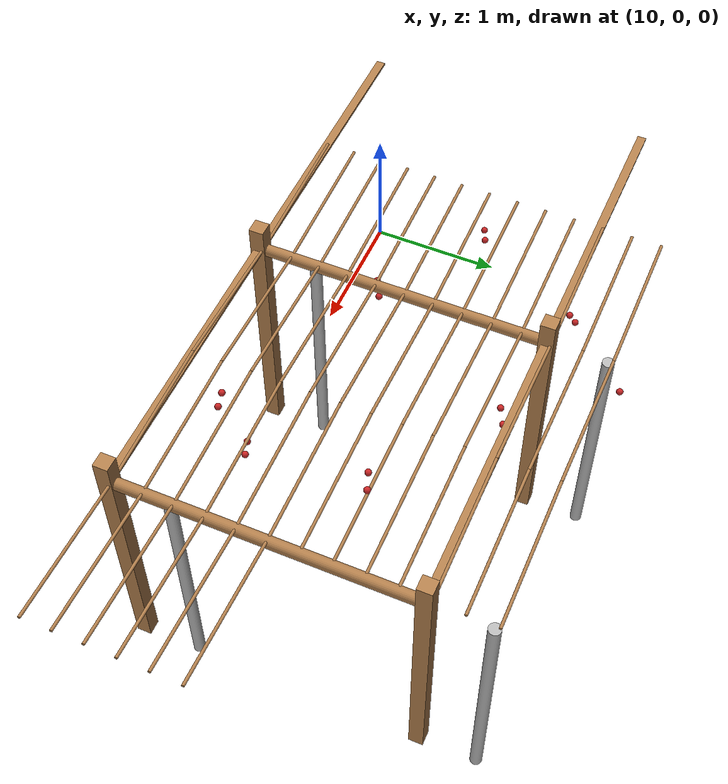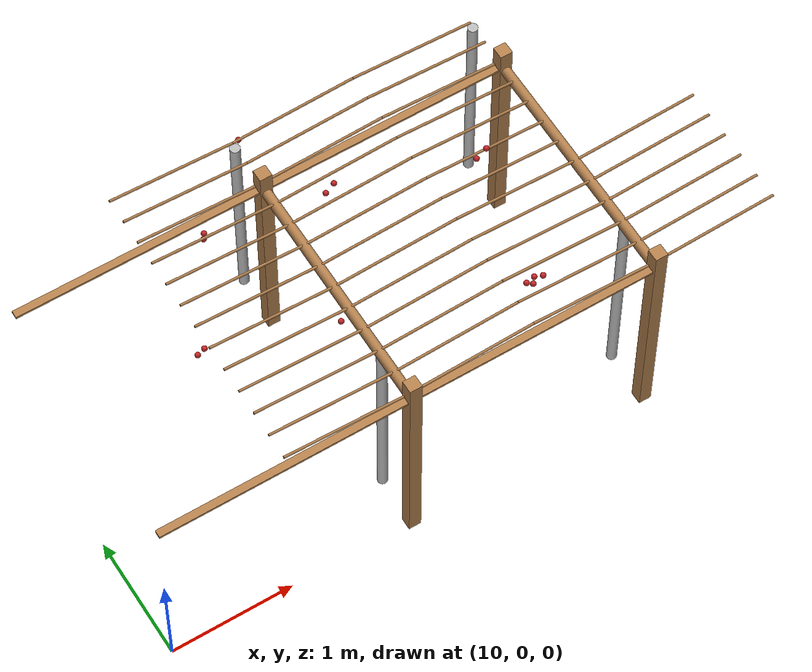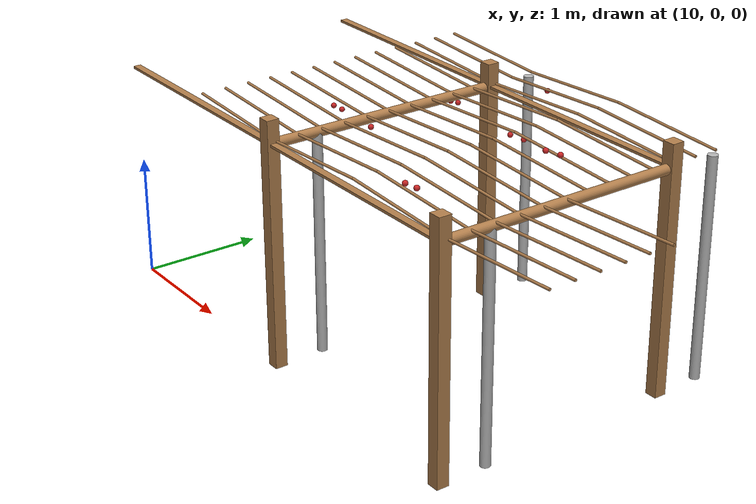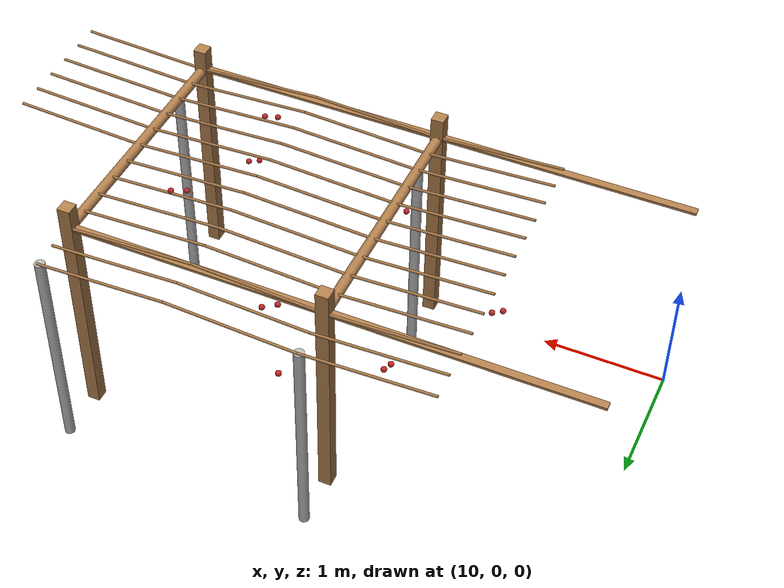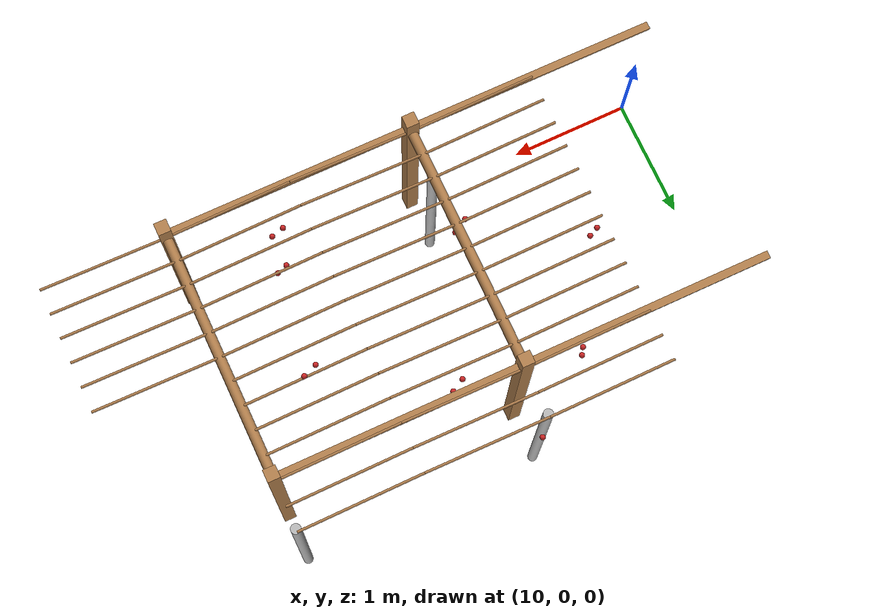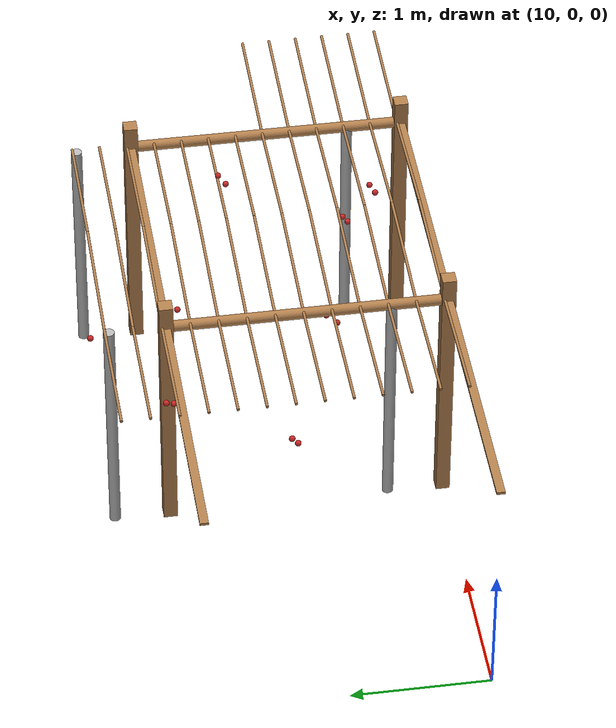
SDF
<sdf version="1.4">
 <model name="pergola">
  <include><name>post_66</name><pose>12.0 0.0 0 0 0 0</pose><uri>model://post</uri></include>
  <include><name>post_67</name><pose>12.0 2.0 0 0 0 0</pose><uri>model://post</uri></include>
  <include><name>post_77</name><pose>14.0 0.0 0 0 0 0</pose><uri>model://post</uri></include>
  <include><name>post_78</name><pose>14.0 2.0 0 0 0 0</pose><uri>model://post</uri></include>
  <link name="beam_55">
   <pose>11.0 0.0 1.81 0 0 0</pose>
   <collision name="collision"><geometry><box><size>2.0 0.06 0.02</size></box></geometry></collision>
   <visual name="visual">
    <geometry><box><size>2.0 0.06 0.02</size></box></geometry>
    <material><script><name>Gazebo/Wood</name></script></material>
   </visual>
   <inertial>
    <mass>5</mass>
    <inertia>
     <ixx>0.0016666666666666668</ixx>
     <ixy>0.0</ixy>
     <ixz>0.0</ixz>
     <iyy>1.6681666666666664</iyy>
     <iyz>0.0</iyz>
     <izz>1.6668333333333332</izz>
    </inertia>
   </inertial>
  </link>
  <link name="beam_56">
   <pose>11.0 2.0 1.81 0 0 0</pose>
   <collision name="collision"><geometry><box><size>2.0 0.06 0.02</size></box></geometry></collision>
   <visual name="visual">
    <geometry><box><size>2.0 0.06 0.02</size></box></geometry>
    <material><script><name>Gazebo/Wood</name></script></material>
   </visual>
   <inertial>
    <mass>5</mass>
    <inertia>
     <ixx>0.0016666666666666668</ixx>
     <ixy>0.0</ixy>
     <ixz>0.0</ixz>
     <iyy>1.6681666666666664</iyy>
     <iyz>0.0</iyz>
     <izz>1.6668333333333332</izz>
    </inertia>
   </inertial>
  </link>
  <link name="beam_66">
   <pose>13.0 0.0 1.81 0 0 0</pose>
   <collision name="collision"><geometry><box><size>2.0 0.06 0.02</size></box></geometry></collision>
   <visual name="visual">
    <geometry><box><size>2.0 0.06 0.02</size></box></geometry>
    <material><script><name>Gazebo/Wood</name></script></material>
   </visual>
   <inertial>
    <mass>5</mass>
    <inertia>
     <ixx>0.0016666666666666668</ixx>
     <ixy>0.0</ixy>
     <ixz>0.0</ixz>
     <iyy>1.6681666666666664</iyy>
     <iyz>0.0</iyz>
     <izz>1.6668333333333332</izz>
    </inertia>
   </inertial>
  </link>
  <link name="beam_67">
   <pose>13.0 2.0 1.81 0 0 0</pose>
   <collision name="collision"><geometry><box><size>2.0 0.06 0.02</size></box></geometry></collision>
   <visual name="visual">
    <geometry><box><size>2.0 0.06 0.02</size></box></geometry>
    <material><script><name>Gazebo/Wood</name></script></material>
   </visual>
   <inertial>
    <mass>5</mass>
    <inertia>
     <ixx>0.0016666666666666668</ixx>
     <ixy>0.0</ixy>
     <ixz>0.0</ixz>
     <iyy>1.6681666666666664</iyy>
     <iyz>0.0</iyz>
     <izz>1.6668333333333332</izz>
    </inertia>
   </inertial>
  </link>
  <include><name>tree_60</name><pose>12.0 0.4 0 0 0 0</pose><uri>model://tree_trunk</uri></include>
  <include><name>tree_61</name><pose>12.0 2.4 0 0 0 0</pose><uri>model://tree_trunk</uri></include>
  <include><name>tree_70</name><pose>14.0 0.4 0 0 0 0</pose><uri>model://tree_trunk</uri></include>
  <include><name>tree_71</name><pose>14.0 2.4 0 0 0 0</pose><uri>model://tree_trunk</uri></include>
  <link name="baseBranch_60">
   <pose>12.0 1.0 1.8 1.5707963267948966 0 0</pose>
   <collision name="collision">
    <geometry><cylinder><radius>0.04</radius><length>1.94</length></cylinder></geometry>
   </collision>
   <visual name="visual">
    <geometry><cylinder><radius>0.04</radius><length>1.94</length></cylinder></geometry>
    <material><script><name>Gazebo/WoodFloor</name></script></material>
   </visual>
   <inertial>
    <mass>10</mass>
    <inertia>
     <ixx>3.140333333333333</ixx>
     <ixy>0.0</ixy>
     <ixz>0.0</ixz>
     <iyy>3.140333333333333</iyy>
     <iyz>0.0</iyz>
     <izz>0.008</izz>
    </inertia>
   </inertial>
  </link>
  <link name="baseBranch_70">
   <pose>14.0 1.0 1.8 1.5707963267948966 0 0</pose>
   <collision name="collision">
    <geometry><cylinder><radius>0.04</radius><length>1.94</length></cylinder></geometry>
   </collision>
   <visual name="visual">
    <geometry><cylinder><radius>0.04</radius><length>1.94</length></cylinder></geometry>
    <material><script><name>Gazebo/WoodFloor</name></script></material>
   </visual>
   <inertial>
    <mass>10</mass>
    <inertia>
     <ixx>3.140333333333333</ixx>
     <ixy>0.0</ixy>
     <ixz>0.0</ixz>
     <iyy>3.140333333333333</iyy>
     <iyz>0.0</iyz>
     <izz>0.008</izz>
    </inertia>
   </inertial>
  </link>
  <link name="vine_1001">
   <pose>11.5 0.03 1.85 0 -1.5208379310729538 0</pose>
   <collision name="collision">
    <geometry><cylinder><radius>0.01</radius><length>1.0012492197250393</length></cylinder></geometry>
   </collision>
   <visual name="visual">
    <geometry><cylinder><radius>0.01</radius><length>1.0012492197250393</length></cylinder></geometry>
    <material><script><name>Gazebo/WoodFloor</name></script></material>
   </visual>
   <inertial>
    <mass>5</mass>
    <inertia>
     <ixx>0.41783333333333345</ixx>
     <ixy>0.0</ixy>
     <ixz>0.0</ixz>
     <iyy>0.41783333333333345</iyy>
     <iyz>0.0</iyz>
     <izz>0.00025</izz>
    </inertia>
   </inertial>
  </link>
  <link name="vine_1003">
   <pose>11.5 0.23 1.85 0 -1.5208379310729538 0</pose>
   <collision name="collision">
    <geometry><cylinder><radius>0.01</radius><length>1.0012492197250393</length></cylinder></geometry>
   </collision>
   <visual name="visual">
    <geometry><cylinder><radius>0.01</radius><length>1.0012492197250393</length></cylinder></geometry>
    <material><script><name>Gazebo/WoodFloor</name></script></material>
   </visual>
   <inertial>
    <mass>5</mass>
    <inertia>
     <ixx>0.41783333333333345</ixx>
     <ixy>0.0</ixy>
     <ixz>0.0</ixz>
     <iyy>0.41783333333333345</iyy>
     <iyz>0.0</iyz>
     <izz>0.00025</izz>
    </inertia>
   </inertial>
  </link>
  <link name="vine_1005">
   <pose>11.5 0.43000000000000005 1.85 0 -1.5208379310729538 0</pose>
   <collision name="collision">
    <geometry><cylinder><radius>0.01</radius><length>1.0012492197250393</length></cylinder></geometry>
   </collision>
   <visual name="visual">
    <geometry><cylinder><radius>0.01</radius><length>1.0012492197250393</length></cylinder></geometry>
    <material><script><name>Gazebo/WoodFloor</name></script></material>
   </visual>
   <inertial>
    <mass>5</mass>
    <inertia>
     <ixx>0.41783333333333345</ixx>
     <ixy>0.0</ixy>
     <ixz>0.0</ixz>
     <iyy>0.41783333333333345</iyy>
     <iyz>0.0</iyz>
     <izz>0.00025</izz>
    </inertia>
   </inertial>
  </link>
  <link name="vine_1007">
   <pose>11.5 0.6300000000000001 1.85 0 -1.5208379310729538 0</pose>
   <collision name="collision">
    <geometry><cylinder><radius>0.01</radius><length>1.0012492197250393</length></cylinder></geometry>
   </collision>
   <visual name="visual">
    <geometry><cylinder><radius>0.01</radius><length>1.0012492197250393</length></cylinder></geometry>
    <material><script><name>Gazebo/WoodFloor</name></script></material>
   </visual>
   <inertial>
    <mass>5</mass>
    <inertia>
     <ixx>0.41783333333333345</ixx>
     <ixy>0.0</ixy>
     <ixz>0.0</ixz>
     <iyy>0.41783333333333345</iyy>
     <iyz>0.0</iyz>
     <izz>0.00025</izz>
    </inertia>
   </inertial>
  </link>
  <link name="vine_1009">
   <pose>11.5 0.8300000000000001 1.85 0 -1.5208379310729538 0</pose>
   <collision name="collision">
    <geometry><cylinder><radius>0.01</radius><length>1.0012492197250393</length></cylinder></geometry>
   </collision>
   <visual name="visual">
    <geometry><cylinder><radius>0.01</radius><length>1.0012492197250393</length></cylinder></geometry>
    <material><script><name>Gazebo/WoodFloor</name></script></material>
   </visual>
   <inertial>
    <mass>5</mass>
    <inertia>
     <ixx>0.41783333333333345</ixx>
     <ixy>0.0</ixy>
     <ixz>0.0</ixz>
     <iyy>0.41783333333333345</iyy>
     <iyz>0.0</iyz>
     <izz>0.00025</izz>
    </inertia>
   </inertial>
  </link>
  <link name="vine_1011">
   <pose>11.5 1.03 1.85 0 -1.5208379310729538 0</pose>
   <collision name="collision">
    <geometry><cylinder><radius>0.01</radius><length>1.0012492197250393</length></cylinder></geometry>
   </collision>
   <visual name="visual">
    <geometry><cylinder><radius>0.01</radius><length>1.0012492197250393</length></cylinder></geometry>
    <material><script><name>Gazebo/WoodFloor</name></script></material>
   </visual>
   <inertial>
    <mass>5</mass>
    <inertia>
     <ixx>0.41783333333333345</ixx>
     <ixy>0.0</ixy>
     <ixz>0.0</ixz>
     <iyy>0.41783333333333345</iyy>
     <iyz>0.0</iyz>
     <izz>0.00025</izz>
    </inertia>
   </inertial>
  </link>
  <link name="vine_1013">
   <pose>11.5 1.2300000000000002 1.85 0 -1.5208379310729538 0</pose>
   <collision name="collision">
    <geometry><cylinder><radius>0.01</radius><length>1.0012492197250393</length></cylinder></geometry>
   </collision>
   <visual name="visual">
    <geometry><cylinder><radius>0.01</radius><length>1.0012492197250393</length></cylinder></geometry>
    <material><script><name>Gazebo/WoodFloor</name></script></material>
   </visual>
   <inertial>
    <mass>5</mass>
    <inertia>
     <ixx>0.41783333333333345</ixx>
     <ixy>0.0</ixy>
     <ixz>0.0</ixz>
     <iyy>0.41783333333333345</iyy>
     <iyz>0.0</iyz>
     <izz>0.00025</izz>
    </inertia>
   </inertial>
  </link>
  <link name="vine_1015">
   <pose>11.5 1.4300000000000002 1.85 0 -1.5208379310729538 0</pose>
   <collision name="collision">
    <geometry><cylinder><radius>0.01</radius><length>1.0012492197250393</length></cylinder></geometry>
   </collision>
   <visual name="visual">
    <geometry><cylinder><radius>0.01</radius><length>1.0012492197250393</length></cylinder></geometry>
    <material><script><name>Gazebo/WoodFloor</name></script></material>
   </visual>
   <inertial>
    <mass>5</mass>
    <inertia>
     <ixx>0.41783333333333345</ixx>
     <ixy>0.0</ixy>
     <ixz>0.0</ixz>
     <iyy>0.41783333333333345</iyy>
     <iyz>0.0</iyz>
     <izz>0.00025</izz>
    </inertia>
   </inertial>
  </link>
  <link name="vine_1017">
   <pose>11.5 1.6300000000000001 1.85 0 -1.5208379310729538 0</pose>
   <collision name="collision">
    <geometry><cylinder><radius>0.01</radius><length>1.0012492197250393</length></cylinder></geometry>
   </collision>
   <visual name="visual">
    <geometry><cylinder><radius>0.01</radius><length>1.0012492197250393</length></cylinder></geometry>
    <material><script><name>Gazebo/WoodFloor</name></script></material>
   </visual>
   <inertial>
    <mass>5</mass>
    <inertia>
     <ixx>0.41783333333333345</ixx>
     <ixy>0.0</ixy>
     <ixz>0.0</ixz>
     <iyy>0.41783333333333345</iyy>
     <iyz>0.0</iyz>
     <izz>0.00025</izz>
    </inertia>
   </inertial>
  </link>
  <link name="vine_1019">
   <pose>11.5 1.83 1.85 0 -1.5208379310729538 0</pose>
   <collision name="collision">
    <geometry><cylinder><radius>0.01</radius><length>1.0012492197250393</length></cylinder></geometry>
   </collision>
   <visual name="visual">
    <geometry><cylinder><radius>0.01</radius><length>1.0012492197250393</length></cylinder></geometry>
    <material><script><name>Gazebo/WoodFloor</name></script></material>
   </visual>
   <inertial>
    <mass>5</mass>
    <inertia>
     <ixx>0.41783333333333345</ixx>
     <ixy>0.0</ixy>
     <ixz>0.0</ixz>
     <iyy>0.41783333333333345</iyy>
     <iyz>0.0</iyz>
     <izz>0.00025</izz>
    </inertia>
   </inertial>
  </link>
  <link name="vine_1021">
   <pose>11.5 2.03 1.85 0 -1.5208379310729538 0</pose>
   <collision name="collision">
    <geometry><cylinder><radius>0.01</radius><length>1.0012492197250393</length></cylinder></geometry>
   </collision>
   <visual name="visual">
    <geometry><cylinder><radius>0.01</radius><length>1.0012492197250393</length></cylinder></geometry>
    <material><script><name>Gazebo/WoodFloor</name></script></material>
   </visual>
   <inertial>
    <mass>5</mass>
    <inertia>
     <ixx>0.41783333333333345</ixx>
     <ixy>0.0</ixy>
     <ixz>0.0</ixz>
     <iyy>0.41783333333333345</iyy>
     <iyz>0.0</iyz>
     <izz>0.00025</izz>
    </inertia>
   </inertial>
  </link>
  <link name="vine_1023">
   <pose>11.5 2.23 1.85 0 -1.5208379310729538 0</pose>
   <collision name="collision">
    <geometry><cylinder><radius>0.01</radius><length>1.0012492197250393</length></cylinder></geometry>
   </collision>
   <visual name="visual">
    <geometry><cylinder><radius>0.01</radius><length>1.0012492197250393</length></cylinder></geometry>
    <material><script><name>Gazebo/WoodFloor</name></script></material>
   </visual>
   <inertial>
    <mass>5</mass>
    <inertia>
     <ixx>0.41783333333333345</ixx>
     <ixy>0.0</ixy>
     <ixz>0.0</ixz>
     <iyy>0.41783333333333345</iyy>
     <iyz>0.0</iyz>
     <izz>0.00025</izz>
    </inertia>
   </inertial>
  </link>
  <link name="vine_1025">
   <pose>11.5 2.43 1.85 0 -1.5208379310729538 0</pose>
   <collision name="collision">
    <geometry><cylinder><radius>0.01</radius><length>1.0012492197250393</length></cylinder></geometry>
   </collision>
   <visual name="visual">
    <geometry><cylinder><radius>0.01</radius><length>1.0012492197250393</length></cylinder></geometry>
    <material><script><name>Gazebo/WoodFloor</name></script></material>
   </visual>
   <inertial>
    <mass>5</mass>
    <inertia>
     <ixx>0.41783333333333345</ixx>
     <ixy>0.0</ixy>
     <ixz>0.0</ixz>
     <iyy>0.41783333333333345</iyy>
     <iyz>0.0</iyz>
     <izz>0.00025</izz>
    </inertia>
   </inertial>
  </link>
  <link name="vine_1200">
   <pose>12.5 0.03 1.85 0 1.5208379310729538 0</pose>
   <collision name="collision">
    <geometry><cylinder><radius>0.01</radius><length>1.0012492197250393</length></cylinder></geometry>
   </collision>
   <visual name="visual">
    <geometry><cylinder><radius>0.01</radius><length>1.0012492197250393</length></cylinder></geometry>
    <material><script><name>Gazebo/WoodFloor</name></script></material>
   </visual>
   <inertial>
    <mass>5</mass>
    <inertia>
     <ixx>0.41783333333333345</ixx>
     <ixy>0.0</ixy>
     <ixz>0.0</ixz>
     <iyy>0.41783333333333345</iyy>
     <iyz>0.0</iyz>
     <izz>0.00025</izz>
    </inertia>
   </inertial>
  </link>
  <link name="vine_1201">
   <pose>13.5 0.03 1.85 0 -1.5208379310729538 0</pose>
   <collision name="collision">
    <geometry><cylinder><radius>0.01</radius><length>1.0012492197250393</length></cylinder></geometry>
   </collision>
   <visual name="visual">
    <geometry><cylinder><radius>0.01</radius><length>1.0012492197250393</length></cylinder></geometry>
    <material><script><name>Gazebo/WoodFloor</name></script></material>
   </visual>
   <inertial>
    <mass>5</mass>
    <inertia>
     <ixx>0.41783333333333345</ixx>
     <ixy>0.0</ixy>
     <ixz>0.0</ixz>
     <iyy>0.41783333333333345</iyy>
     <iyz>0.0</iyz>
     <izz>0.00025</izz>
    </inertia>
   </inertial>
  </link>
  <link name="vine_1202">
   <pose>12.5 0.23 1.85 0 1.5208379310729538 0</pose>
   <collision name="collision">
    <geometry><cylinder><radius>0.01</radius><length>1.0012492197250393</length></cylinder></geometry>
   </collision>
   <visual name="visual">
    <geometry><cylinder><radius>0.01</radius><length>1.0012492197250393</length></cylinder></geometry>
    <material><script><name>Gazebo/WoodFloor</name></script></material>
   </visual>
   <inertial>
    <mass>5</mass>
    <inertia>
     <ixx>0.41783333333333345</ixx>
     <ixy>0.0</ixy>
     <ixz>0.0</ixz>
     <iyy>0.41783333333333345</iyy>
     <iyz>0.0</iyz>
     <izz>0.00025</izz>
    </inertia>
   </inertial>
  </link>
  <link name="vine_1203">
   <pose>13.5 0.23 1.85 0 -1.5208379310729538 0</pose>
   <collision name="collision">
    <geometry><cylinder><radius>0.01</radius><length>1.0012492197250393</length></cylinder></geometry>
   </collision>
   <visual name="visual">
    <geometry><cylinder><radius>0.01</radius><length>1.0012492197250393</length></cylinder></geometry>
    <material><script><name>Gazebo/WoodFloor</name></script></material>
   </visual>
   <inertial>
    <mass>5</mass>
    <inertia>
     <ixx>0.41783333333333345</ixx>
     <ixy>0.0</ixy>
     <ixz>0.0</ixz>
     <iyy>0.41783333333333345</iyy>
     <iyz>0.0</iyz>
     <izz>0.00025</izz>
    </inertia>
   </inertial>
  </link>
  <link name="vine_1204">
   <pose>12.5 0.43000000000000005 1.85 0 1.5208379310729538 0</pose>
   <collision name="collision">
    <geometry><cylinder><radius>0.01</radius><length>1.0012492197250393</length></cylinder></geometry>
   </collision>
   <visual name="visual">
    <geometry><cylinder><radius>0.01</radius><length>1.0012492197250393</length></cylinder></geometry>
    <material><script><name>Gazebo/WoodFloor</name></script></material>
   </visual>
   <inertial>
    <mass>5</mass>
    <inertia>
     <ixx>0.41783333333333345</ixx>
     <ixy>0.0</ixy>
     <ixz>0.0</ixz>
     <iyy>0.41783333333333345</iyy>
     <iyz>0.0</iyz>
     <izz>0.00025</izz>
    </inertia>
   </inertial>
  </link>
  <link name="vine_1205">
   <pose>13.5 0.43000000000000005 1.85 0 -1.5208379310729538 0</pose>
   <collision name="collision">
    <geometry><cylinder><radius>0.01</radius><length>1.0012492197250393</length></cylinder></geometry>
   </collision>
   <visual name="visual">
    <geometry><cylinder><radius>0.01</radius><length>1.0012492197250393</length></cylinder></geometry>
    <material><script><name>Gazebo/WoodFloor</name></script></material>
   </visual>
   <inertial>
    <mass>5</mass>
    <inertia>
     <ixx>0.41783333333333345</ixx>
     <ixy>0.0</ixy>
     <ixz>0.0</ixz>
     <iyy>0.41783333333333345</iyy>
     <iyz>0.0</iyz>
     <izz>0.00025</izz>
    </inertia>
   </inertial>
  </link>
  <link name="vine_1206">
   <pose>12.5 0.6300000000000001 1.85 0 1.5208379310729538 0</pose>
   <collision name="collision">
    <geometry><cylinder><radius>0.01</radius><length>1.0012492197250393</length></cylinder></geometry>
   </collision>
   <visual name="visual">
    <geometry><cylinder><radius>0.01</radius><length>1.0012492197250393</length></cylinder></geometry>
    <material><script><name>Gazebo/WoodFloor</name></script></material>
   </visual>
   <inertial>
    <mass>5</mass>
    <inertia>
     <ixx>0.41783333333333345</ixx>
     <ixy>0.0</ixy>
     <ixz>0.0</ixz>
     <iyy>0.41783333333333345</iyy>
     <iyz>0.0</iyz>
     <izz>0.00025</izz>
    </inertia>
   </inertial>
  </link>
  <link name="vine_1207">
   <pose>13.5 0.6300000000000001 1.85 0 -1.5208379310729538 0</pose>
   <collision name="collision">
    <geometry><cylinder><radius>0.01</radius><length>1.0012492197250393</length></cylinder></geometry>
   </collision>
   <visual name="visual">
    <geometry><cylinder><radius>0.01</radius><length>1.0012492197250393</length></cylinder></geometry>
    <material><script><name>Gazebo/WoodFloor</name></script></material>
   </visual>
   <inertial>
    <mass>5</mass>
    <inertia>
     <ixx>0.41783333333333345</ixx>
     <ixy>0.0</ixy>
     <ixz>0.0</ixz>
     <iyy>0.41783333333333345</iyy>
     <iyz>0.0</iyz>
     <izz>0.00025</izz>
    </inertia>
   </inertial>
  </link>
  <link name="vine_1208">
   <pose>12.5 0.8300000000000001 1.85 0 1.5208379310729538 0</pose>
   <collision name="collision">
    <geometry><cylinder><radius>0.01</radius><length>1.0012492197250393</length></cylinder></geometry>
   </collision>
   <visual name="visual">
    <geometry><cylinder><radius>0.01</radius><length>1.0012492197250393</length></cylinder></geometry>
    <material><script><name>Gazebo/WoodFloor</name></script></material>
   </visual>
   <inertial>
    <mass>5</mass>
    <inertia>
     <ixx>0.41783333333333345</ixx>
     <ixy>0.0</ixy>
     <ixz>0.0</ixz>
     <iyy>0.41783333333333345</iyy>
     <iyz>0.0</iyz>
     <izz>0.00025</izz>
    </inertia>
   </inertial>
  </link>
  <link name="vine_1209">
   <pose>13.5 0.8300000000000001 1.85 0 -1.5208379310729538 0</pose>
   <collision name="collision">
    <geometry><cylinder><radius>0.01</radius><length>1.0012492197250393</length></cylinder></geometry>
   </collision>
   <visual name="visual">
    <geometry><cylinder><radius>0.01</radius><length>1.0012492197250393</length></cylinder></geometry>
    <material><script><name>Gazebo/WoodFloor</name></script></material>
   </visual>
   <inertial>
    <mass>5</mass>
    <inertia>
     <ixx>0.41783333333333345</ixx>
     <ixy>0.0</ixy>
     <ixz>0.0</ixz>
     <iyy>0.41783333333333345</iyy>
     <iyz>0.0</iyz>
     <izz>0.00025</izz>
    </inertia>
   </inertial>
  </link>
  <link name="vine_1210">
   <pose>12.5 1.03 1.85 0 1.5208379310729538 0</pose>
   <collision name="collision">
    <geometry><cylinder><radius>0.01</radius><length>1.0012492197250393</length></cylinder></geometry>
   </collision>
   <visual name="visual">
    <geometry><cylinder><radius>0.01</radius><length>1.0012492197250393</length></cylinder></geometry>
    <material><script><name>Gazebo/WoodFloor</name></script></material>
   </visual>
   <inertial>
    <mass>5</mass>
    <inertia>
     <ixx>0.41783333333333345</ixx>
     <ixy>0.0</ixy>
     <ixz>0.0</ixz>
     <iyy>0.41783333333333345</iyy>
     <iyz>0.0</iyz>
     <izz>0.00025</izz>
    </inertia>
   </inertial>
  </link>
  <link name="vine_1211">
   <pose>13.5 1.03 1.85 0 -1.5208379310729538 0</pose>
   <collision name="collision">
    <geometry><cylinder><radius>0.01</radius><length>1.0012492197250393</length></cylinder></geometry>
   </collision>
   <visual name="visual">
    <geometry><cylinder><radius>0.01</radius><length>1.0012492197250393</length></cylinder></geometry>
    <material><script><name>Gazebo/WoodFloor</name></script></material>
   </visual>
   <inertial>
    <mass>5</mass>
    <inertia>
     <ixx>0.41783333333333345</ixx>
     <ixy>0.0</ixy>
     <ixz>0.0</ixz>
     <iyy>0.41783333333333345</iyy>
     <iyz>0.0</iyz>
     <izz>0.00025</izz>
    </inertia>
   </inertial>
  </link>
  <link name="vine_1212">
   <pose>12.5 1.2300000000000002 1.85 0 1.5208379310729538 0</pose>
   <collision name="collision">
    <geometry><cylinder><radius>0.01</radius><length>1.0012492197250393</length></cylinder></geometry>
   </collision>
   <visual name="visual">
    <geometry><cylinder><radius>0.01</radius><length>1.0012492197250393</length></cylinder></geometry>
    <material><script><name>Gazebo/WoodFloor</name></script></material>
   </visual>
   <inertial>
    <mass>5</mass>
    <inertia>
     <ixx>0.41783333333333345</ixx>
     <ixy>0.0</ixy>
     <ixz>0.0</ixz>
     <iyy>0.41783333333333345</iyy>
     <iyz>0.0</iyz>
     <izz>0.00025</izz>
    </inertia>
   </inertial>
  </link>
  <link name="vine_1213">
   <pose>13.5 1.2300000000000002 1.85 0 -1.5208379310729538 0</pose>
   <collision name="collision">
    <geometry><cylinder><radius>0.01</radius><length>1.0012492197250393</length></cylinder></geometry>
   </collision>
   <visual name="visual">
    <geometry><cylinder><radius>0.01</radius><length>1.0012492197250393</length></cylinder></geometry>
    <material><script><name>Gazebo/WoodFloor</name></script></material>
   </visual>
   <inertial>
    <mass>5</mass>
    <inertia>
     <ixx>0.41783333333333345</ixx>
     <ixy>0.0</ixy>
     <ixz>0.0</ixz>
     <iyy>0.41783333333333345</iyy>
     <iyz>0.0</iyz>
     <izz>0.00025</izz>
    </inertia>
   </inertial>
  </link>
  <link name="vine_1214">
   <pose>12.5 1.4300000000000002 1.85 0 1.5208379310729538 0</pose>
   <collision name="collision">
    <geometry><cylinder><radius>0.01</radius><length>1.0012492197250393</length></cylinder></geometry>
   </collision>
   <visual name="visual">
    <geometry><cylinder><radius>0.01</radius><length>1.0012492197250393</length></cylinder></geometry>
    <material><script><name>Gazebo/WoodFloor</name></script></material>
   </visual>
   <inertial>
    <mass>5</mass>
    <inertia>
     <ixx>0.41783333333333345</ixx>
     <ixy>0.0</ixy>
     <ixz>0.0</ixz>
     <iyy>0.41783333333333345</iyy>
     <iyz>0.0</iyz>
     <izz>0.00025</izz>
    </inertia>
   </inertial>
  </link>
  <link name="vine_1215">
   <pose>13.5 1.4300000000000002 1.85 0 -1.5208379310729538 0</pose>
   <collision name="collision">
    <geometry><cylinder><radius>0.01</radius><length>1.0012492197250393</length></cylinder></geometry>
   </collision>
   <visual name="visual">
    <geometry><cylinder><radius>0.01</radius><length>1.0012492197250393</length></cylinder></geometry>
    <material><script><name>Gazebo/WoodFloor</name></script></material>
   </visual>
   <inertial>
    <mass>5</mass>
    <inertia>
     <ixx>0.41783333333333345</ixx>
     <ixy>0.0</ixy>
     <ixz>0.0</ixz>
     <iyy>0.41783333333333345</iyy>
     <iyz>0.0</iyz>
     <izz>0.00025</izz>
    </inertia>
   </inertial>
  </link>
  <link name="vine_1216">
   <pose>12.5 1.6300000000000001 1.85 0 1.5208379310729538 0</pose>
   <collision name="collision">
    <geometry><cylinder><radius>0.01</radius><length>1.0012492197250393</length></cylinder></geometry>
   </collision>
   <visual name="visual">
    <geometry><cylinder><radius>0.01</radius><length>1.0012492197250393</length></cylinder></geometry>
    <material><script><name>Gazebo/WoodFloor</name></script></material>
   </visual>
   <inertial>
    <mass>5</mass>
    <inertia>
     <ixx>0.41783333333333345</ixx>
     <ixy>0.0</ixy>
     <ixz>0.0</ixz>
     <iyy>0.41783333333333345</iyy>
     <iyz>0.0</iyz>
     <izz>0.00025</izz>
    </inertia>
   </inertial>
  </link>
  <link name="vine_1217">
   <pose>13.5 1.6300000000000001 1.85 0 -1.5208379310729538 0</pose>
   <collision name="collision">
    <geometry><cylinder><radius>0.01</radius><length>1.0012492197250393</length></cylinder></geometry>
   </collision>
   <visual name="visual">
    <geometry><cylinder><radius>0.01</radius><length>1.0012492197250393</length></cylinder></geometry>
    <material><script><name>Gazebo/WoodFloor</name></script></material>
   </visual>
   <inertial>
    <mass>5</mass>
    <inertia>
     <ixx>0.41783333333333345</ixx>
     <ixy>0.0</ixy>
     <ixz>0.0</ixz>
     <iyy>0.41783333333333345</iyy>
     <iyz>0.0</iyz>
     <izz>0.00025</izz>
    </inertia>
   </inertial>
  </link>
  <link name="vine_1218">
   <pose>12.5 1.83 1.85 0 1.5208379310729538 0</pose>
   <collision name="collision">
    <geometry><cylinder><radius>0.01</radius><length>1.0012492197250393</length></cylinder></geometry>
   </collision>
   <visual name="visual">
    <geometry><cylinder><radius>0.01</radius><length>1.0012492197250393</length></cylinder></geometry>
    <material><script><name>Gazebo/WoodFloor</name></script></material>
   </visual>
   <inertial>
    <mass>5</mass>
    <inertia>
     <ixx>0.41783333333333345</ixx>
     <ixy>0.0</ixy>
     <ixz>0.0</ixz>
     <iyy>0.41783333333333345</iyy>
     <iyz>0.0</iyz>
     <izz>0.00025</izz>
    </inertia>
   </inertial>
  </link>
  <link name="vine_1219">
   <pose>13.5 1.83 1.85 0 -1.5208379310729538 0</pose>
   <collision name="collision">
    <geometry><cylinder><radius>0.01</radius><length>1.0012492197250393</length></cylinder></geometry>
   </collision>
   <visual name="visual">
    <geometry><cylinder><radius>0.01</radius><length>1.0012492197250393</length></cylinder></geometry>
    <material><script><name>Gazebo/WoodFloor</name></script></material>
   </visual>
   <inertial>
    <mass>5</mass>
    <inertia>
     <ixx>0.41783333333333345</ixx>
     <ixy>0.0</ixy>
     <ixz>0.0</ixz>
     <iyy>0.41783333333333345</iyy>
     <iyz>0.0</iyz>
     <izz>0.00025</izz>
    </inertia>
   </inertial>
  </link>
  <link name="vine_1220">
   <pose>12.5 2.03 1.85 0 1.5208379310729538 0</pose>
   <collision name="collision">
    <geometry><cylinder><radius>0.01</radius><length>1.0012492197250393</length></cylinder></geometry>
   </collision>
   <visual name="visual">
    <geometry><cylinder><radius>0.01</radius><length>1.0012492197250393</length></cylinder></geometry>
    <material><script><name>Gazebo/WoodFloor</name></script></material>
   </visual>
   <inertial>
    <mass>5</mass>
    <inertia>
     <ixx>0.41783333333333345</ixx>
     <ixy>0.0</ixy>
     <ixz>0.0</ixz>
     <iyy>0.41783333333333345</iyy>
     <iyz>0.0</iyz>
     <izz>0.00025</izz>
    </inertia>
   </inertial>
  </link>
  <link name="vine_1221">
   <pose>13.5 2.03 1.85 0 -1.5208379310729538 0</pose>
   <collision name="collision">
    <geometry><cylinder><radius>0.01</radius><length>1.0012492197250393</length></cylinder></geometry>
   </collision>
   <visual name="visual">
    <geometry><cylinder><radius>0.01</radius><length>1.0012492197250393</length></cylinder></geometry>
    <material><script><name>Gazebo/WoodFloor</name></script></material>
   </visual>
   <inertial>
    <mass>5</mass>
    <inertia>
     <ixx>0.41783333333333345</ixx>
     <ixy>0.0</ixy>
     <ixz>0.0</ixz>
     <iyy>0.41783333333333345</iyy>
     <iyz>0.0</iyz>
     <izz>0.00025</izz>
    </inertia>
   </inertial>
  </link>
  <link name="vine_1222">
   <pose>12.5 2.23 1.85 0 1.5208379310729538 0</pose>
   <collision name="collision">
    <geometry><cylinder><radius>0.01</radius><length>1.0012492197250393</length></cylinder></geometry>
   </collision>
   <visual name="visual">
    <geometry><cylinder><radius>0.01</radius><length>1.0012492197250393</length></cylinder></geometry>
    <material><script><name>Gazebo/WoodFloor</name></script></material>
   </visual>
   <inertial>
    <mass>5</mass>
    <inertia>
     <ixx>0.41783333333333345</ixx>
     <ixy>0.0</ixy>
     <ixz>0.0</ixz>
     <iyy>0.41783333333333345</iyy>
     <iyz>0.0</iyz>
     <izz>0.00025</izz>
    </inertia>
   </inertial>
  </link>
  <link name="vine_1223">
   <pose>13.5 2.23 1.85 0 -1.5208379310729538 0</pose>
   <collision name="collision">
    <geometry><cylinder><radius>0.01</radius><length>1.0012492197250393</length></cylinder></geometry>
   </collision>
   <visual name="visual">
    <geometry><cylinder><radius>0.01</radius><length>1.0012492197250393</length></cylinder></geometry>
    <material><script><name>Gazebo/WoodFloor</name></script></material>
   </visual>
   <inertial>
    <mass>5</mass>
    <inertia>
     <ixx>0.41783333333333345</ixx>
     <ixy>0.0</ixy>
     <ixz>0.0</ixz>
     <iyy>0.41783333333333345</iyy>
     <iyz>0.0</iyz>
     <izz>0.00025</izz>
    </inertia>
   </inertial>
  </link>
  <link name="vine_1224">
   <pose>12.5 2.43 1.85 0 1.5208379310729538 0</pose>
   <collision name="collision">
    <geometry><cylinder><radius>0.01</radius><length>1.0012492197250393</length></cylinder></geometry>
   </collision>
   <visual name="visual">
    <geometry><cylinder><radius>0.01</radius><length>1.0012492197250393</length></cylinder></geometry>
    <material><script><name>Gazebo/WoodFloor</name></script></material>
   </visual>
   <inertial>
    <mass>5</mass>
    <inertia>
     <ixx>0.41783333333333345</ixx>
     <ixy>0.0</ixy>
     <ixz>0.0</ixz>
     <iyy>0.41783333333333345</iyy>
     <iyz>0.0</iyz>
     <izz>0.00025</izz>
    </inertia>
   </inertial>
  </link>
  <link name="vine_1225">
   <pose>13.5 2.43 1.85 0 -1.5208379310729538 0</pose>
   <collision name="collision">
    <geometry><cylinder><radius>0.01</radius><length>1.0012492197250393</length></cylinder></geometry>
   </collision>
   <visual name="visual">
    <geometry><cylinder><radius>0.01</radius><length>1.0012492197250393</length></cylinder></geometry>
    <material><script><name>Gazebo/WoodFloor</name></script></material>
   </visual>
   <inertial>
    <mass>5</mass>
    <inertia>
     <ixx>0.41783333333333345</ixx>
     <ixy>0.0</ixy>
     <ixz>0.0</ixz>
     <iyy>0.41783333333333345</iyy>
     <iyz>0.0</iyz>
     <izz>0.00025</izz>
    </inertia>
   </inertial>
  </link>
  <link name="vine_1400">
   <pose>14.5 0.03 1.85 0 1.5208379310729538 0</pose>
   <collision name="collision">
    <geometry><cylinder><radius>0.01</radius><length>1.0012492197250393</length></cylinder></geometry>
   </collision>
   <visual name="visual">
    <geometry><cylinder><radius>0.01</radius><length>1.0012492197250393</length></cylinder></geometry>
    <material><script><name>Gazebo/WoodFloor</name></script></material>
   </visual>
   <inertial>
    <mass>5</mass>
    <inertia>
     <ixx>0.41783333333333345</ixx>
     <ixy>0.0</ixy>
     <ixz>0.0</ixz>
     <iyy>0.41783333333333345</iyy>
     <iyz>0.0</iyz>
     <izz>0.00025</izz>
    </inertia>
   </inertial>
  </link>
  <link name="vine_1402">
   <pose>14.5 0.23 1.85 0 1.5208379310729538 0</pose>
   <collision name="collision">
    <geometry><cylinder><radius>0.01</radius><length>1.0012492197250393</length></cylinder></geometry>
   </collision>
   <visual name="visual">
    <geometry><cylinder><radius>0.01</radius><length>1.0012492197250393</length></cylinder></geometry>
    <material><script><name>Gazebo/WoodFloor</name></script></material>
   </visual>
   <inertial>
    <mass>5</mass>
    <inertia>
     <ixx>0.41783333333333345</ixx>
     <ixy>0.0</ixy>
     <ixz>0.0</ixz>
     <iyy>0.41783333333333345</iyy>
     <iyz>0.0</iyz>
     <izz>0.00025</izz>
    </inertia>
   </inertial>
  </link>
  <link name="vine_1404">
   <pose>14.5 0.43000000000000005 1.85 0 1.5208379310729538 0</pose>
   <collision name="collision">
    <geometry><cylinder><radius>0.01</radius><length>1.0012492197250393</length></cylinder></geometry>
   </collision>
   <visual name="visual">
    <geometry><cylinder><radius>0.01</radius><length>1.0012492197250393</length></cylinder></geometry>
    <material><script><name>Gazebo/WoodFloor</name></script></material>
   </visual>
   <inertial>
    <mass>5</mass>
    <inertia>
     <ixx>0.41783333333333345</ixx>
     <ixy>0.0</ixy>
     <ixz>0.0</ixz>
     <iyy>0.41783333333333345</iyy>
     <iyz>0.0</iyz>
     <izz>0.00025</izz>
    </inertia>
   </inertial>
  </link>
  <link name="vine_1406">
   <pose>14.5 0.6300000000000001 1.85 0 1.5208379310729538 0</pose>
   <collision name="collision">
    <geometry><cylinder><radius>0.01</radius><length>1.0012492197250393</length></cylinder></geometry>
   </collision>
   <visual name="visual">
    <geometry><cylinder><radius>0.01</radius><length>1.0012492197250393</length></cylinder></geometry>
    <material><script><name>Gazebo/WoodFloor</name></script></material>
   </visual>
   <inertial>
    <mass>5</mass>
    <inertia>
     <ixx>0.41783333333333345</ixx>
     <ixy>0.0</ixy>
     <ixz>0.0</ixz>
     <iyy>0.41783333333333345</iyy>
     <iyz>0.0</iyz>
     <izz>0.00025</izz>
    </inertia>
   </inertial>
  </link>
  <link name="vine_1408">
   <pose>14.5 0.8300000000000001 1.85 0 1.5208379310729538 0</pose>
   <collision name="collision">
    <geometry><cylinder><radius>0.01</radius><length>1.0012492197250393</length></cylinder></geometry>
   </collision>
   <visual name="visual">
    <geometry><cylinder><radius>0.01</radius><length>1.0012492197250393</length></cylinder></geometry>
    <material><script><name>Gazebo/WoodFloor</name></script></material>
   </visual>
   <inertial>
    <mass>5</mass>
    <inertia>
     <ixx>0.41783333333333345</ixx>
     <ixy>0.0</ixy>
     <ixz>0.0</ixz>
     <iyy>0.41783333333333345</iyy>
     <iyz>0.0</iyz>
     <izz>0.00025</izz>
    </inertia>
   </inertial>
  </link>
  <link name="vine_1410">
   <pose>14.5 1.03 1.85 0 1.5208379310729538 0</pose>
   <collision name="collision">
    <geometry><cylinder><radius>0.01</radius><length>1.0012492197250393</length></cylinder></geometry>
   </collision>
   <visual name="visual">
    <geometry><cylinder><radius>0.01</radius><length>1.0012492197250393</length></cylinder></geometry>
    <material><script><name>Gazebo/WoodFloor</name></script></material>
   </visual>
   <inertial>
    <mass>5</mass>
    <inertia>
     <ixx>0.41783333333333345</ixx>
     <ixy>0.0</ixy>
     <ixz>0.0</ixz>
     <iyy>0.41783333333333345</iyy>
     <iyz>0.0</iyz>
     <izz>0.00025</izz>
    </inertia>
   </inertial>
  </link>
  <link name="fruit_23">
   <pose>12.429177368289636 1.8656736105723692 1.5665954757488787 0 0 0</pose>
   <collision name="fruit_collision_23"><geometry><sphere><radius>0.022</radius></sphere></geometry></collision>
   <visual name="visual">
    <geometry><sphere><radius>0.022</radius></sphere></geometry>
    <material><script><name>Gazebo/Red</name></script></material>
   </visual>
   <inertial>
    <mass>0.05</mass>
    <inertia>
     <ixx>9.679999999999999e-06</ixx>
     <ixy>0.0</ixy>
     <ixz>0.0</ixz>
     <iyy>9.679999999999999e-06</iyy>
     <iyz>0.0</iyz>
     <izz>9.679999999999999e-06</izz>
    </inertia>
   </inertial>
   <sensor name="fruit_contact_23" type="contact">
    <contact><collision>fruit_collision_23</collision></contact>
   </sensor>
  </link>
  <link name="fruit_27">
   <pose>13.261566916005947 0.5075822703947505 1.5176971700911668 0 0 0</pose>
   <collision name="fruit_collision_27"><geometry><sphere><radius>0.022</radius></sphere></geometry></collision>
   <visual name="visual">
    <geometry><sphere><radius>0.022</radius></sphere></geometry>
    <material><script><name>Gazebo/Red</name></script></material>
   </visual>
   <inertial>
    <mass>0.05</mass>
    <inertia>
     <ixx>9.679999999999999e-06</ixx>
     <ixy>0.0</ixy>
     <ixz>0.0</ixz>
     <iyy>9.679999999999999e-06</iyy>
     <iyz>0.0</iyz>
     <izz>9.679999999999999e-06</izz>
    </inertia>
   </inertial>
   <sensor name="fruit_contact_27" type="contact">
    <contact><collision>fruit_collision_27</collision></contact>
   </sensor>
  </link>
  <link name="fruit_103">
   <pose>12.094100889368809 2.520781568319845 1.6760720047791535 0 0 0</pose>
   <collision name="fruit_collision_103"><geometry><sphere><radius>0.022</radius></sphere></geometry></collision>
   <visual name="visual">
    <geometry><sphere><radius>0.022</radius></sphere></geometry>
    <material><script><name>Gazebo/Red</name></script></material>
   </visual>
   <inertial>
    <mass>0.05</mass>
    <inertia>
     <ixx>9.679999999999999e-06</ixx>
     <ixy>0.0</ixy>
     <ixz>0.0</ixz>
     <iyy>9.679999999999999e-06</iyy>
     <iyz>0.0</iyz>
     <izz>9.679999999999999e-06</izz>
    </inertia>
   </inertial>
   <sensor name="fruit_contact_103" type="contact">
    <contact><collision>fruit_collision_103</collision></contact>
   </sensor>
  </link>
  <link name="fruit_146">
   <pose>11.916464855949105 0.8022200746389682 1.7533310479236994 0 0 0</pose>
   <collision name="fruit_collision_146"><geometry><sphere><radius>0.022</radius></sphere></geometry></collision>
   <visual name="visual">
    <geometry><sphere><radius>0.022</radius></sphere></geometry>
    <material><script><name>Gazebo/Red</name></script></material>
   </visual>
   <inertial>
    <mass>0.05</mass>
    <inertia>
     <ixx>9.679999999999999e-06</ixx>
     <ixy>0.0</ixy>
     <ixz>0.0</ixz>
     <iyy>9.679999999999999e-06</iyy>
     <iyz>0.0</iyz>
     <izz>9.679999999999999e-06</izz>
    </inertia>
   </inertial>
   <sensor name="fruit_contact_146" type="contact">
    <contact><collision>fruit_collision_146</collision></contact>
   </sensor>
  </link>
  <link name="fruit_158">
   <pose>13.38862471354615 1.3823395332443966 1.8747223968950921 0 0 0</pose>
   <collision name="fruit_collision_158"><geometry><sphere><radius>0.022</radius></sphere></geometry></collision>
   <visual name="visual">
    <geometry><sphere><radius>0.022</radius></sphere></geometry>
    <material><script><name>Gazebo/Red</name></script></material>
   </visual>
   <inertial>
    <mass>0.05</mass>
    <inertia>
     <ixx>9.679999999999999e-06</ixx>
     <ixy>0.0</ixy>
     <ixz>0.0</ixz>
     <iyy>9.679999999999999e-06</iyy>
     <iyz>0.0</iyz>
     <izz>9.679999999999999e-06</izz>
    </inertia>
   </inertial>
   <sensor name="fruit_contact_158" type="contact">
    <contact><collision>fruit_collision_158</collision></contact>
   </sensor>
  </link>
  <link name="fruit_310">
   <pose>13.18658925898873 0.3223743991786672 1.8310636362625543 0 0 0</pose>
   <collision name="fruit_collision_310"><geometry><sphere><radius>0.022</radius></sphere></geometry></collision>
   <visual name="visual">
    <geometry><sphere><radius>0.022</radius></sphere></geometry>
    <material><script><name>Gazebo/Red</name></script></material>
   </visual>
   <inertial>
    <mass>0.05</mass>
    <inertia>
     <ixx>9.679999999999999e-06</ixx>
     <ixy>0.0</ixy>
     <ixz>0.0</ixz>
     <iyy>9.679999999999999e-06</iyy>
     <iyz>0.0</iyz>
     <izz>9.679999999999999e-06</izz>
    </inertia>
   </inertial>
   <sensor name="fruit_contact_310" type="contact">
    <contact><collision>fruit_collision_310</collision></contact>
   </sensor>
  </link>
  <link name="fruit_323">
   <pose>11.503965573624976 2.010896551714075 1.5241267362830189 0 0 0</pose>
   <collision name="fruit_collision_323"><geometry><sphere><radius>0.022</radius></sphere></geometry></collision>
   <visual name="visual">
    <geometry><sphere><radius>0.022</radius></sphere></geometry>
    <material><script><name>Gazebo/Red</name></script></material>
   </visual>
   <inertial>
    <mass>0.05</mass>
    <inertia>
     <ixx>9.679999999999999e-06</ixx>
     <ixy>0.0</ixy>
     <ixz>0.0</ixz>
     <iyy>9.679999999999999e-06</iyy>
     <iyz>0.0</iyz>
     <izz>9.679999999999999e-06</izz>
    </inertia>
   </inertial>
   <sensor name="fruit_contact_323" type="contact">
    <contact><collision>fruit_collision_323</collision></contact>
   </sensor>
  </link>
  <link name="fruit_327">
   <pose>10.997045909596858 1.2169357629201758 1.5099608352681393 0 0 0</pose>
   <collision name="fruit_collision_327"><geometry><sphere><radius>0.022</radius></sphere></geometry></collision>
   <visual name="visual">
    <geometry><sphere><radius>0.022</radius></sphere></geometry>
    <material><script><name>Gazebo/Red</name></script></material>
   </visual>
   <inertial>
    <mass>0.05</mass>
    <inertia>
     <ixx>9.679999999999999e-06</ixx>
     <ixy>0.0</ixy>
     <ixz>0.0</ixz>
     <iyy>9.679999999999999e-06</iyy>
     <iyz>0.0</iyz>
     <izz>9.679999999999999e-06</izz>
    </inertia>
   </inertial>
   <sensor name="fruit_contact_327" type="contact">
    <contact><collision>fruit_collision_327</collision></contact>
   </sensor>
  </link>
  <link name="fruit_435">
   <pose>11.534268094869915 2.060691293528146 1.508565319254718 0 0 0</pose>
   <collision name="fruit_collision_435"><geometry><sphere><radius>0.022</radius></sphere></geometry></collision>
   <visual name="visual">
    <geometry><sphere><radius>0.022</radius></sphere></geometry>
    <material><script><name>Gazebo/Red</name></script></material>
   </visual>
   <inertial>
    <mass>0.05</mass>
    <inertia>
     <ixx>9.679999999999999e-06</ixx>
     <ixy>0.0</ixy>
     <ixz>0.0</ixz>
     <iyy>9.679999999999999e-06</iyy>
     <iyz>0.0</iyz>
     <izz>9.679999999999999e-06</izz>
    </inertia>
   </inertial>
   <sensor name="fruit_contact_435" type="contact">
    <contact><collision>fruit_collision_435</collision></contact>
   </sensor>
  </link>
  <link name="fruit_590">
   <pose>13.497770857168167 1.4233780452535878 1.8673596125901928 0 0 0</pose>
   <collision name="fruit_collision_590"><geometry><sphere><radius>0.022</radius></sphere></geometry></collision>
   <visual name="visual">
    <geometry><sphere><radius>0.022</radius></sphere></geometry>
    <material><script><name>Gazebo/Red</name></script></material>
   </visual>
   <inertial>
    <mass>0.05</mass>
    <inertia>
     <ixx>9.679999999999999e-06</ixx>
     <ixy>0.0</ixy>
     <ixz>0.0</ixz>
     <iyy>9.679999999999999e-06</iyy>
     <iyz>0.0</iyz>
     <izz>9.679999999999999e-06</izz>
    </inertia>
   </inertial>
   <sensor name="fruit_contact_590" type="contact">
    <contact><collision>fruit_collision_590</collision></contact>
   </sensor>
  </link>
  <link name="fruit_650">
   <pose>11.06730358170326 1.2477910375210772 1.491388505136355 0 0 0</pose>
   <collision name="fruit_collision_650"><geometry><sphere><radius>0.022</radius></sphere></geometry></collision>
   <visual name="visual">
    <geometry><sphere><radius>0.022</radius></sphere></geometry>
    <material><script><name>Gazebo/Red</name></script></material>
   </visual>
   <inertial>
    <mass>0.05</mass>
    <inertia>
     <ixx>9.679999999999999e-06</ixx>
     <ixy>0.0</ixy>
     <ixz>0.0</ixz>
     <iyy>9.679999999999999e-06</iyy>
     <iyz>0.0</iyz>
     <izz>9.679999999999999e-06</izz>
    </inertia>
   </inertial>
   <sensor name="fruit_contact_650" type="contact">
    <contact><collision>fruit_collision_650</collision></contact>
   </sensor>
  </link>
  <link name="fruit_672">
   <pose>12.527986360671418 1.9179204598059552 1.5467297029574125 0 0 0</pose>
   <collision name="fruit_collision_672"><geometry><sphere><radius>0.022</radius></sphere></geometry></collision>
   <visual name="visual">
    <geometry><sphere><radius>0.022</radius></sphere></geometry>
    <material><script><name>Gazebo/Red</name></script></material>
   </visual>
   <inertial>
    <mass>0.05</mass>
    <inertia>
     <ixx>9.679999999999999e-06</ixx>
     <ixy>0.0</ixy>
     <ixz>0.0</ixz>
     <iyy>9.679999999999999e-06</iyy>
     <iyz>0.0</iyz>
     <izz>9.679999999999999e-06</izz>
    </inertia>
   </inertial>
   <sensor name="fruit_contact_672" type="contact">
    <contact><collision>fruit_collision_672</collision></contact>
   </sensor>
  </link>
  <link name="fruit_827">
   <pose>13.34201930691179 0.5321905107356749 1.4987561231219215 0 0 0</pose>
   <collision name="fruit_collision_827"><geometry><sphere><radius>0.022</radius></sphere></geometry></collision>
   <visual name="visual">
    <geometry><sphere><radius>0.022</radius></sphere></geometry>
    <material><script><name>Gazebo/Red</name></script></material>
   </visual>
   <inertial>
    <mass>0.05</mass>
    <inertia>
     <ixx>9.679999999999999e-06</ixx>
     <ixy>0.0</ixy>
     <ixz>0.0</ixz>
     <iyy>9.679999999999999e-06</iyy>
     <iyz>0.0</iyz>
     <izz>9.679999999999999e-06</izz>
    </inertia>
   </inertial>
   <sensor name="fruit_contact_827" type="contact">
    <contact><collision>fruit_collision_827</collision></contact>
   </sensor>
  </link>
  <link name="fruit_929">
   <pose>13.284207018590342 0.347025677775451 1.824645901598434 0 0 0</pose>
   <collision name="fruit_collision_929"><geometry><sphere><radius>0.022</radius></sphere></geometry></collision>
   <visual name="visual">
    <geometry><sphere><radius>0.022</radius></sphere></geometry>
    <material><script><name>Gazebo/Red</name></script></material>
   </visual>
   <inertial>
    <mass>0.05</mass>
    <inertia>
     <ixx>9.679999999999999e-06</ixx>
     <ixy>0.0</ixy>
     <ixz>0.0</ixz>
     <iyy>9.679999999999999e-06</iyy>
     <iyz>0.0</iyz>
     <izz>9.679999999999999e-06</izz>
    </inertia>
   </inertial>
   <sensor name="fruit_contact_929" type="contact">
    <contact><collision>fruit_collision_929</collision></contact>
   </sensor>
  </link>
  <link name="fruit_967">
   <pose>12.024251285407095 0.8606364654433757 1.7372324373642236 0 0 0</pose>
   <collision name="fruit_collision_967"><geometry><sphere><radius>0.022</radius></sphere></geometry></collision>
   <visual name="visual">
    <geometry><sphere><radius>0.022</radius></sphere></geometry>
    <material><script><name>Gazebo/Red</name></script></material>
   </visual>
   <inertial>
    <mass>0.05</mass>
    <inertia>
     <ixx>9.679999999999999e-06</ixx>
     <ixy>0.0</ixy>
     <ixz>0.0</ixz>
     <iyy>9.679999999999999e-06</iyy>
     <iyz>0.0</iyz>
     <izz>9.679999999999999e-06</izz>
    </inertia>
   </inertial>
   <sensor name="fruit_contact_967" type="contact">
    <contact><collision>fruit_collision_967</collision></contact>
   </sensor>
  </link>
 </model>
</sdf>
